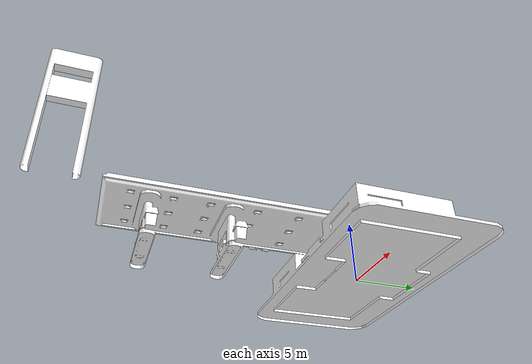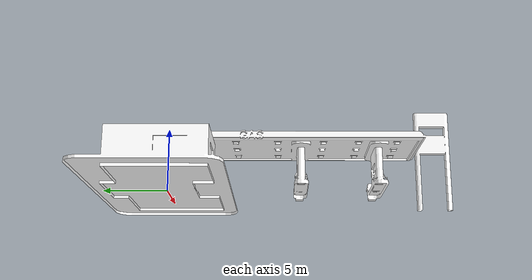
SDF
<?xml version="1.0" ?>
<sdf version="1.5">
  <model name="Gas Station">
    <static>true</static>
    <link name="link">
      <pose>0 0 0 0 0 0</pose>
      <collision name="collision">
        <geometry>
          <mesh>
            <uri>model://gas_station/meshes/gas_station.dae</uri>
          </mesh>
        </geometry>
      </collision>
      <visual name="visual">
        <geometry>
          <mesh>
            <uri>model://gas_station/meshes/gas_station.dae</uri>
          </mesh>
        </geometry>
        <material>
          <script>
            <uri>model://gas_station/materials/scripts</uri>
            <uri>model://gas_station/materials/textures</uri>
            <name>GasStation/Diffuse</name>
          </script>
          <shader type="normal_map_object_space">
            <normal_map>GasStation_Normal.png</normal_map>
          </shader>
        </material>
      </visual>
    </link>
  </model>
</sdf>
